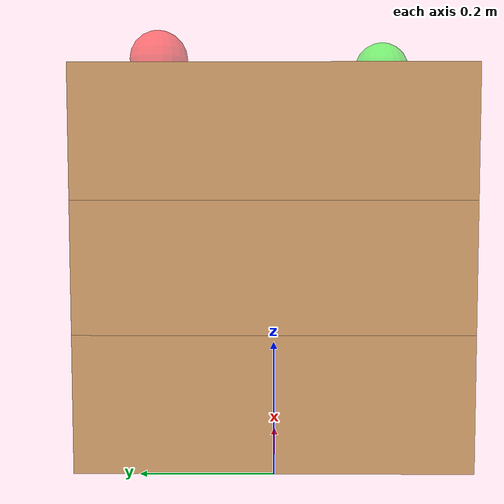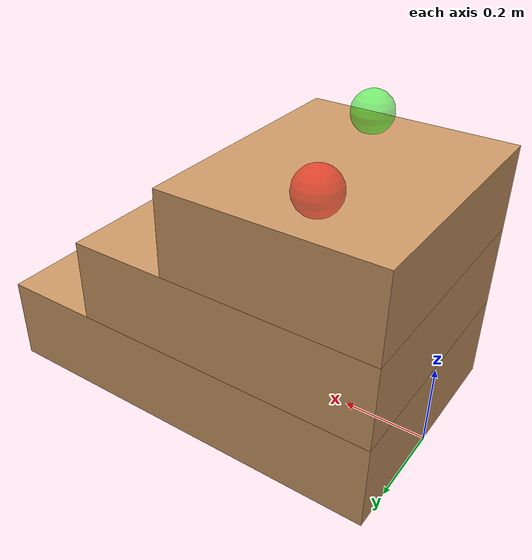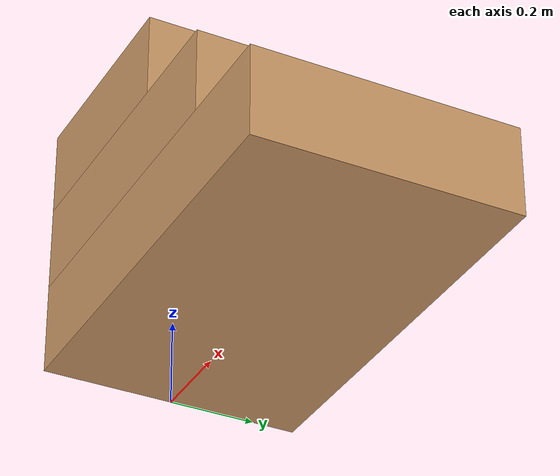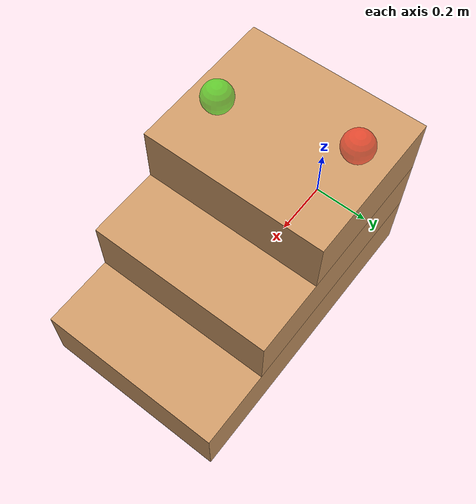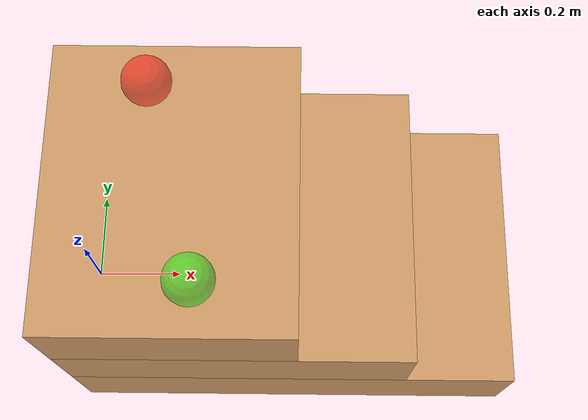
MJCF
<mujoco model="stair">
  <worldbody>
    <body name="stair">
        <freejoint name="stair_root" />
        <geom name="step1" type="box"
            size="0.49 0.3 0.105"
            pos="0.49 0 0.105"
            material="wood" condim="3" contype="1" conaffinity="1"/>

        <geom name="step2" type="box"
            size="0.37 0.3 0.10"
            pos="0.37 0 0.31"
            material="wood" condim="3" contype="1" conaffinity="1"/>

        <geom name="step3" type="box"
            size="0.25 0.3 0.10"
            pos="0.25 0 0.51"
            material="wood" condim="3" contype="1" conaffinity="1"/>

        <site name="right_hand_contact" pos="0.2 0.2 0.65" size="0.05" type="sphere" rgba="1 0 0 0.5"/>
        <site name="left_hand_contact" pos="0.3 -0.2 0.65" size="0.05" type="sphere" rgba="0 1 0 0.5"/>
    </body>
  </worldbody>

  <asset>
    <material name="wood" rgba="0.8 0.6 0.4 1"/>
  </asset>
</mujoco>
